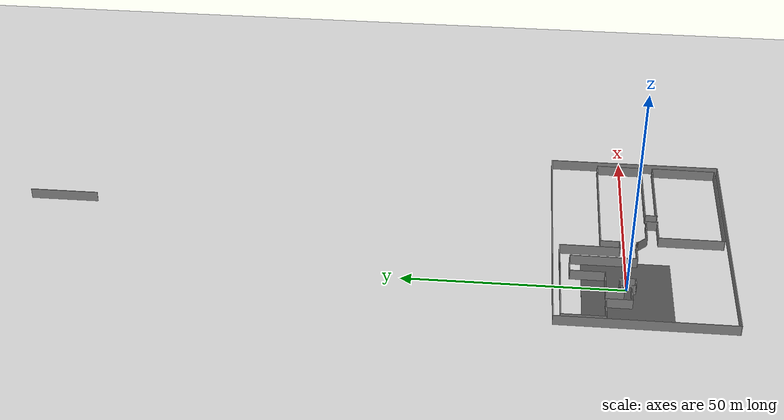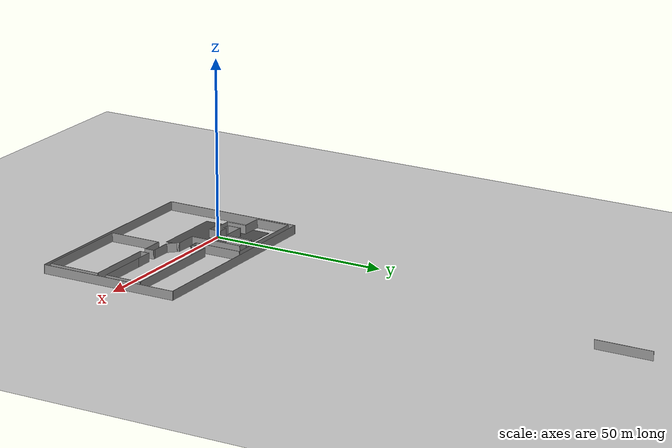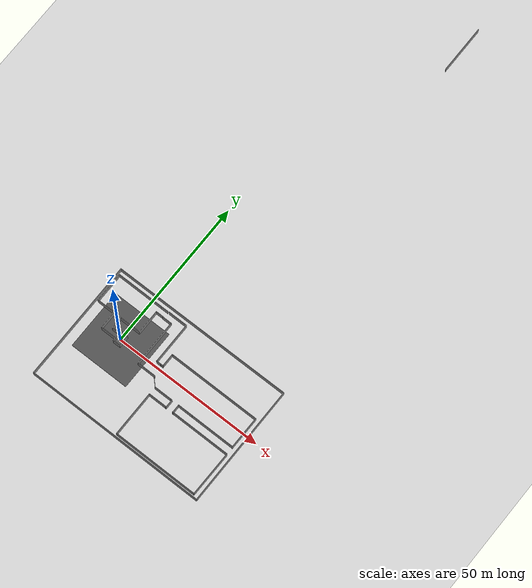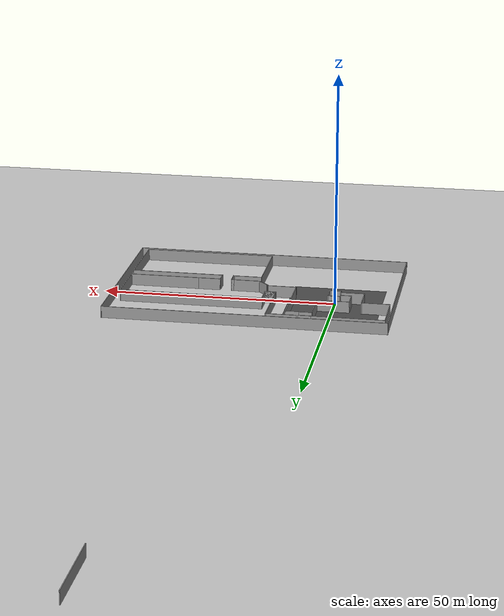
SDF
<sdf version="1.6">
 <world name="default">
  <light name="sun" type="directional">
   <pose>0 0 10 0 -0 0</pose>
   <diffuse>0.8 0.8 0.8 1</diffuse>
   <specular>0.2 0.2 0.2 1</specular>
   <attenuation>
    <range>1000</range>
    <constant>0.9</constant>
    <linear>0.01</linear>
    <quadratic>0.001</quadratic>
   </attenuation>
   <direction>-0.5 0.1 -0.9</direction>
  </light>
  <model name="ground_plane">
   <static>1</static>
   <link name="link">
    <collision name="collision">
     <geometry><plane><normal>0 0 1</normal><size>100 100</size></plane></geometry>
     <surface>
      <contact><collide_bitmask>65535</collide_bitmask></contact>
      <friction><ode><mu>100</mu><mu2>50</mu2></ode></friction>
     </surface>
    </collision>
    <visual name="visual">
     <cast_shadows>0</cast_shadows>
     <geometry><plane><normal>0 0 1</normal><size>100 100</size></plane></geometry>
     <material>
      <script><uri>file://media/materials/scripts/gazebo.material</uri><name>Gazebo/Grey</name></script>
     </material>
    </visual>
   </link>
  </model>
  <gravity>0 0 -9.8</gravity>
  <magnetic_field>6e-06 2.3e-05 -4.2e-05</magnetic_field>
  <atmosphere type="adiabatic"/>
  <physics name="default_physics" default="0" type="ode">
   <max_step_size>0.001</max_step_size>
   <real_time_factor>1</real_time_factor>
   <real_time_update_rate>1000</real_time_update_rate>
  </physics>
  <scene><ambient>0.4 0.4 0.4 1</ambient><background>0.7 0.7 0.7 1</background><shadows>1</shadows></scene>
  <audio><device>default</device></audio>
  <spherical_coordinates>
   <surface_model>EARTH_WGS84</surface_model>
   <latitude_deg>0</latitude_deg>
   <longitude_deg>0</longitude_deg>
   <elevation>0</elevation>
   <heading_deg>0</heading_deg>
  </spherical_coordinates>
  <model name="base1">
   <pose>17.0437 -3.5496 0 0 -0 0</pose>
   <link name="Wall_0">
    <collision name="Wall_0_Collision">
     <geometry><box><size>60.15 0.15 2.5</size></box></geometry>
     <pose>0 0 1.25 0 -0 0</pose>
    </collision>
    <visual name="Wall_0_Visual">
     <pose>0 0 1.25 0 -0 0</pose>
     <geometry><box><size>60.15 0.15 2.5</size></box></geometry>
     <material>
      <script><uri>file://media/materials/scripts/gazebo.material</uri><name>Gazebo/Grey</name></script>
      <ambient>1 1 1 1</ambient>
     </material>
     <meta><layer>0</layer></meta>
    </visual>
    <pose>0 19.8688 0 0 -0 0.0025</pose>
   </link>
   <link name="Wall_1">
    <collision name="Wall_1_Collision">
     <geometry><box><size>39.9818 0.15 2.5</size></box></geometry>
     <pose>0 0 1.25 0 -0 0</pose>
    </collision>
    <visual name="Wall_1_Visual">
     <pose>0 0 1.25 0 -0 0</pose>
     <geometry><box><size>39.9818 0.15 2.5</size></box></geometry>
     <material>
      <script><uri>file://media/materials/scripts/gazebo.material</uri><name>Gazebo/Grey</name></script>
      <ambient>1 1 1 1</ambient>
     </material>
     <meta><layer>0</layer></meta>
    </visual>
    <pose>30 0.027935 0 0 -0 -1.5708</pose>
   </link>
   <link name="Wall_2">
    <collision name="Wall_2_Collision">
     <geometry><box><size>60.15 0.15 2.5</size></box></geometry>
     <pose>0 0 1.25 0 -0 0</pose>
    </collision>
    <visual name="Wall_2_Visual">
     <pose>0 0 1.25 0 -0 0</pose>
     <geometry><box><size>60.15 0.15 2.5</size></box></geometry>
     <material>
      <script><uri>file://media/materials/scripts/gazebo.material</uri><name>Gazebo/Grey</name></script>
      <ambient>1 1 1 1</ambient>
     </material>
     <meta><layer>0</layer></meta>
    </visual>
    <pose>0 -19.944 0 0 -0 3.14159</pose>
   </link>
   <link name="Wall_3">
    <collision name="Wall_3_Collision">
     <geometry><box><size>39.8318 0.15 2.5</size></box></geometry>
     <pose>0 0 1.25 0 -0 0</pose>
    </collision>
    <visual name="Wall_3_Visual">
     <pose>0 0 1.25 0 -0 0</pose>
     <geometry><box><size>39.8318 0.15 2.5</size></box></geometry>
     <material>
      <script><uri>file://media/materials/scripts/gazebo.material</uri><name>Gazebo/Grey</name></script>
      <ambient>1 1 1 1</ambient>
     </material>
     <meta><layer>0</layer></meta>
    </visual>
    <pose>-30 -0.047064 0 0 -0 1.5708</pose>
   </link>
   <static>1</static>
  </model>
  <model name="base2">
   <pose>31.3228 58.5968 0 0 -0 0</pose>
   <link name="Wall_0">
    <collision name="Wall_0_Collision">
     <geometry><box><size>16 0.15 2.5</size></box></geometry>
     <pose>0 0 1.25 0 -0 0</pose>
    </collision>
    <visual name="Wall_0_Visual">
     <pose>0 0 1.25 0 -0 0</pose>
     <geometry><box><size>16 0.15 2.5</size></box></geometry>
     <material>
      <script><uri>file://media/materials/scripts/gazebo.material</uri><name>Gazebo/Grey</name></script>
      <ambient>1 1 1 1</ambient>
     </material>
     <meta><layer>0</layer></meta>
    </visual>
    <pose>-8.06233 73.3002 0 0 -0 -1.5708</pose>
   </link>
   <link name="Wall_13">
    <collision name="Wall_13_Collision">
     <geometry><box><size>28.449 0.15 2.5</size></box></geometry>
     <pose>0 0 1.25 0 -0 0</pose>
    </collision>
    <visual name="Wall_13_Visual">
     <pose>0 0 1.25 0 -0 0</pose>
     <geometry><box><size>28.449 0.15 2.5</size></box></geometry>
     <material>
      <script><uri>file://media/materials/scripts/gazebo.material</uri><name>Gazebo/Grey</name></script>
      <ambient>1 1 1 1</ambient>
     </material>
     <meta><layer>0</layer></meta>
    </visual>
    <pose>-0.067791 -81.2248 0 0 -0 3.14159</pose>
   </link>
   <link name="Wall_14">
    <collision name="Wall_14_Collision">
     <geometry><box><size>15 0.15 2.5</size></box></geometry>
     <pose>0 0 1.25 0 -0 0</pose>
    </collision>
    <visual name="Wall_14_Visual">
     <pose>0 0 1.25 0 -0 0</pose>
     <geometry><box><size>15 0.15 2.5</size></box></geometry>
     <material>
      <script><uri>file://media/materials/scripts/gazebo.material</uri><name>Gazebo/Grey</name></script>
      <ambient>1 1 1 1</ambient>
     </material>
     <meta><layer>0</layer></meta>
    </visual>
    <pose>-14.2173 -73.7998 0 0 -0 1.5708</pose>
   </link>
   <link name="Wall_16">
    <collision name="Wall_16_Collision">
     <geometry><box><size>15.0001 0.15 2.5</size></box></geometry>
     <pose>0 0 1.25 0 -0 0</pose>
    </collision>
    <visual name="Wall_16_Visual">
     <pose>0 0 1.25 0 -0 0</pose>
     <geometry><box><size>15.0001 0.15 2.5</size></box></geometry>
     <material>
      <script><uri>file://media/materials/scripts/gazebo.material</uri><name>Gazebo/Grey</name></script>
      <ambient>1 1 1 1</ambient>
     </material>
     <meta><layer>0</layer></meta>
    </visual>
    <pose>14.1492 -73.7998 0 0 -0 1.56171</pose>
   </link>
   <link name="Wall_18">
    <collision name="Wall_18_Collision">
     <geometry><box><size>6 0.15 2.5</size></box></geometry>
     <pose>0 0 1.25 0 -0 0</pose>
    </collision>
    <visual name="Wall_18_Visual">
     <pose>0 0 1.25 0 -0 0</pose>
     <geometry><box><size>6 0.15 2.5</size></box></geometry>
     <material>
      <script><uri>file://media/materials/scripts/gazebo.material</uri><name>Gazebo/Grey</name></script>
      <ambient>1 1 1 1</ambient>
     </material>
     <meta><layer>0</layer></meta>
    </visual>
    <pose>-11.2923 -66.3748 0 0 -0 0</pose>
   </link>
   <link name="Wall_20">
    <collision name="Wall_20_Collision">
     <geometry><box><size>20 0.15 2.5</size></box></geometry>
     <pose>0 0 1.25 0 -0 0</pose>
    </collision>
    <visual name="Wall_20_Visual">
     <pose>0 0 1.25 0 -0 0</pose>
     <geometry><box><size>20 0.15 2.5</size></box></geometry>
     <material>
      <script><uri>file://media/materials/scripts/gazebo.material</uri><name>Gazebo/Grey</name></script>
      <ambient>1 1 1 1</ambient>
     </material>
     <meta><layer>0</layer></meta>
    </visual>
    <pose>4.24665 -66.3748 0 0 -0 3.14159</pose>
   </link>
   <static>1</static>
  </model>
  <model name="base3">
   <pose>-3.18328 6.38977 0 0 -0 0</pose>
   <link name="Wall_24">
    <collision name="Wall_24_Collision">
     <geometry><box><size>15.5938 0.15 2.5</size></box></geometry>
     <pose>0 0 1.25 0 -0 0</pose>
    </collision>
    <visual name="Wall_24_Visual">
     <pose>0 0 1.25 0 -0 0</pose>
     <geometry><box><size>15.5938 0.15 2.5</size></box></geometry>
     <material>
      <script><uri>file://media/materials/scripts/gazebo.material</uri><name>Gazebo/Grey</name></script>
      <ambient>1 1 1 1</ambient>
     </material>
     <meta><layer>0</layer></meta>
    </visual>
    <pose>-1.30283 8.24113 0 0 -0 3.14159</pose>
   </link>
   <link name="Wall_25">
    <collision name="Wall_25_Collision">
     <geometry><box><size>9.93212 0.15 2.5</size></box></geometry>
     <pose>0 0 1.25 0 -0 0</pose>
    </collision>
    <visual name="Wall_25_Visual">
     <pose>0 0 1.25 0 -0 0</pose>
     <geometry><box><size>9.93212 0.15 2.5</size></box></geometry>
     <material>
      <script><uri>file://media/materials/scripts/gazebo.material</uri><name>Gazebo/Grey</name></script>
      <ambient>1 1 1 1</ambient>
     </material>
     <meta><layer>0</layer></meta>
    </visual>
    <pose>-9.025 3.35007 0 0 -0 -1.57083</pose>
   </link>
   <link name="Wall_26">
    <collision name="Wall_26_Collision">
     <geometry><box><size>6.18234 0.15 2.5</size></box></geometry>
     <pose>0 0 1.25 0 -0 0</pose>
    </collision>
    <visual name="Wall_26_Visual">
     <pose>0 0 1.25 0 -0 0</pose>
     <geometry><box><size>6.18234 0.15 2.5</size></box></geometry>
     <material>
      <script><uri>file://media/materials/scripts/gazebo.material</uri><name>Gazebo/Grey</name></script>
      <ambient>1 1 1 1</ambient>
     </material>
     <meta><layer>0</layer></meta>
    </visual>
    <pose>-6.009 -1.54093 0 0 -0 2e-05</pose>
   </link>
   <link name="Wall_27">
    <collision name="Wall_27_Collision">
     <geometry><box><size>5.90845 0.15 2.5</size></box></geometry>
     <pose>0 0 1.25 0 -0 0</pose>
    </collision>
    <visual name="Wall_27_Visual">
     <pose>0 0 1.25 0 -0 0</pose>
     <geometry><box><size>5.90845 0.15 2.5</size></box></geometry>
     <material>
      <script><uri>file://media/materials/scripts/gazebo.material</uri><name>Gazebo/Grey</name></script>
      <ambient>1 1 1 1</ambient>
     </material>
     <meta><layer>0</layer></meta>
    </visual>
    <pose>-2.99283 -4.41987 0 0 -0 -1.5708</pose>
   </link>
   <link name="Wall_28">
    <collision name="Wall_28_Collision">
     <geometry><box><size>5.25 0.15 2.5</size></box></geometry>
     <pose>0 0 1.25 0 -0 0</pose>
    </collision>
    <visual name="Wall_28_Visual">
     <pose>0 0 1.25 0 -0 0</pose>
     <geometry><box><size>5.25 0.15 2.5</size></box></geometry>
     <material>
      <script><uri>file://media/materials/scripts/gazebo.material</uri><name>Gazebo/Grey</name></script>
      <ambient>1 1 1 1</ambient>
     </material>
     <meta><layer>0</layer></meta>
    </visual>
    <pose>-0.442828 -7.29887 0 0 -0 0</pose>
   </link>
   <link name="Wall_29">
    <collision name="Wall_29_Collision">
     <geometry><box><size>1.092 0.15 2.5</size></box></geometry>
     <pose>0 0 1.25 0 -0 0</pose>
    </collision>
    <visual name="Wall_29_Visual">
     <pose>0 0 1.25 0 -0 0</pose>
     <geometry><box><size>1.092 0.15 2.5</size></box></geometry>
     <material>
      <script><uri>file://media/materials/scripts/gazebo.material</uri><name>Gazebo/Grey</name></script>
      <ambient>1 1 1 1</ambient>
     </material>
     <meta><layer>0</layer></meta>
    </visual>
    <pose>2.10717 -7.76987 0 0 -0 -1.5708</pose>
   </link>
   <link name="Wall_30">
    <collision name="Wall_30_Collision">
     <geometry><box><size>2.595 0.15 2.5</size></box></geometry>
     <pose>0 0 1.25 0 -0 0</pose>
    </collision>
    <visual name="Wall_30_Visual">
     <pose>0 0 1.25 0 -0 0</pose>
     <geometry><box><size>2.595 0.15 2.5</size></box></geometry>
     <material>
      <script><uri>file://media/materials/scripts/gazebo.material</uri><name>Gazebo/Grey</name></script>
      <ambient>1 1 1 1</ambient>
     </material>
     <meta><layer>0</layer></meta>
    </visual>
    <pose>3.32967 -8.24087 0 0 -0 0</pose>
   </link>
   <link name="Wall_31">
    <collision name="Wall_31_Collision">
     <geometry><box><size>3.59352 0.15 2.5</size></box></geometry>
     <pose>0 0 1.25 0 -0 0</pose>
    </collision>
    <visual name="Wall_31_Visual">
     <pose>0 0 1.25 0 -0 0</pose>
     <geometry><box><size>3.59352 0.15 2.5</size></box></geometry>
     <material>
      <script><uri>file://media/materials/scripts/gazebo.material</uri><name>Gazebo/Grey</name></script>
      <ambient>1 1 1 1</ambient>
     </material>
     <meta><layer>0</layer></meta>
    </visual>
    <pose>4.55217 -6.51937 0 0 -0 1.5708</pose>
   </link>
   <link name="Wall_32">
    <collision name="Wall_32_Collision">
     <geometry><box><size>2.836 0.15 2.5</size></box></geometry>
     <pose>0 0 1.25 0 -0 0</pose>
    </collision>
    <visual name="Wall_32_Visual">
     <pose>0 0 1.25 0 -0 0</pose>
     <geometry><box><size>2.836 0.15 2.5</size></box></geometry>
     <material>
      <script><uri>file://media/materials/scripts/gazebo.material</uri><name>Gazebo/Grey</name></script>
      <ambient>1 1 1 1</ambient>
     </material>
     <meta><layer>0</layer></meta>
    </visual>
    <pose>3.20917 -4.79787 0 0 -0 3.14159</pose>
   </link>
   <link name="Wall_33">
    <collision name="Wall_33_Collision">
     <geometry><box><size>0.845597 0.15 2.5</size></box></geometry>
     <pose>0 0 1.25 0 -0 0</pose>
    </collision>
    <visual name="Wall_33_Visual">
     <pose>0 0 1.25 0 -0 0</pose>
     <geometry><box><size>0.845597 0.15 2.5</size></box></geometry>
     <material>
      <script><uri>file://media/materials/scripts/gazebo.material</uri><name>Gazebo/Grey</name></script>
      <ambient>1 1 1 1</ambient>
     </material>
     <meta><layer>0</layer></meta>
    </visual>
    <pose>1.8955 -5.14443 0 0 -0 -1.48636</pose>
   </link>
   <link name="Wall_34">
    <collision name="Wall_34_Collision">
     <geometry><box><size>2.43391 0.15 2.5</size></box></geometry>
     <pose>0 0 1.25 0 -0 0</pose>
    </collision>
    <visual name="Wall_34_Visual">
     <pose>0 0 1.25 0 -0 0</pose>
     <geometry><box><size>2.43391 0.15 2.5</size></box></geometry>
     <material>
      <script><uri>file://media/materials/scripts/gazebo.material</uri><name>Gazebo/Grey</name></script>
      <ambient>1 1 1 1</ambient>
     </material>
     <meta><layer>0</layer></meta>
    </visual>
    <pose>0.782876 -5.49099 0 0 -0 3.14159</pose>
   </link>
   <link name="Wall_35">
    <collision name="Wall_35_Collision">
     <geometry><box><size>4 0.15 2.5</size></box></geometry>
     <pose>0 0 1.25 0 -0 0</pose>
    </collision>
    <visual name="Wall_35_Visual">
     <pose>0 0 1.25 0 -0 0</pose>
     <geometry><box><size>4 0.15 2.5</size></box></geometry>
     <material>
      <script><uri>file://media/materials/scripts/gazebo.material</uri><name>Gazebo/Grey</name></script>
      <ambient>1 1 1 1</ambient>
     </material>
     <meta><layer>0</layer></meta>
    </visual>
    <pose>-0.427089 -3.56599 0 0 -0 1.5708</pose>
   </link>
   <link name="Wall_36">
    <collision name="Wall_36_Collision">
     <geometry><box><size>6.93391 0.15 2.5</size></box></geometry>
     <pose>0 0 1.25 0 -0 0</pose>
    </collision>
    <visual name="Wall_36_Visual">
     <pose>0 0 1.25 0 -0 0</pose>
     <geometry><box><size>6.93391 0.15 2.5</size></box></geometry>
     <material>
      <script><uri>file://media/materials/scripts/gazebo.material</uri><name>Gazebo/Grey</name></script>
      <ambient>1 1 1 1</ambient>
     </material>
     <meta><layer>0</layer></meta>
    </visual>
    <pose>3.03288 -1.64099 0 0 -0 0</pose>
   </link>
   <link name="Wall_37">
    <collision name="Wall_37_Collision">
     <geometry><box><size>7.95612 0.15 2.5</size></box></geometry>
     <pose>0 0 1.25 0 -0 0</pose>
    </collision>
    <visual name="Wall_37_Visual">
     <pose>0 0 1.25 0 -0 0</pose>
     <geometry><box><size>7.95612 0.15 2.5</size></box></geometry>
     <material>
      <script><uri>file://media/materials/scripts/gazebo.material</uri><name>Gazebo/Grey</name></script>
      <ambient>1 1 1 1</ambient>
     </material>
     <meta><layer>0</layer></meta>
    </visual>
    <pose>6.425 2.26207 0 0 -0 1.57075</pose>
   </link>
   <link name="Wall_38">
    <collision name="Wall_38_Collision">
     <geometry><box><size>2.75 0.15 2.5</size></box></geometry>
     <pose>0 0 1.25 0 -0 0</pose>
    </collision>
    <visual name="Wall_38_Visual">
     <pose>0 0 1.25 0 -0 0</pose>
     <geometry><box><size>2.75 0.15 2.5</size></box></geometry>
     <material>
      <script><uri>file://media/materials/scripts/gazebo.material</uri><name>Gazebo/Grey</name></script>
      <ambient>1 1 1 1</ambient>
     </material>
     <meta><layer>0</layer></meta>
    </visual>
    <pose>7.72517 6.16513 0 0 -0 0</pose>
   </link>
   <link name="Wall_40">
    <collision name="Wall_40_Collision">
     <geometry><box><size>2.697 0.15 2.5</size></box></geometry>
     <pose>0 0 1.25 0 -0 0</pose>
    </collision>
    <visual name="Wall_40_Visual">
     <pose>0 0 1.25 0 -0 0</pose>
     <geometry><box><size>2.697 0.15 2.5</size></box></geometry>
     <material>
      <script><uri>file://media/materials/scripts/gazebo.material</uri><name>Gazebo/Grey</name></script>
      <ambient>1 1 1 1</ambient>
     </material>
     <meta><layer>0</layer></meta>
    </visual>
    <pose>7.69267 8.24113 0 0 -0 3.14159</pose>
   </link>
   <static>1</static>
  </model>
  <model name="base6">
   <pose>30.1922 -1.22503 0 0 -0 0</pose>
   <link name="Wall_82">
    <collision name="Wall_82_Collision">
     <geometry><box><size>3.25 0.15 2.5</size></box></geometry>
     <pose>0 0 1.25 0 -0 0</pose>
    </collision>
    <visual name="Wall_82_Visual">
     <pose>0 0 1.25 0 -0 0</pose>
     <geometry><box><size>3.25 0.15 2.5</size></box></geometry>
     <material>
      <script><uri>file://media/materials/scripts/gazebo.material</uri><name>Gazebo/Grey</name></script>
      <ambient>1 1 1 1</ambient>
     </material>
     <meta><layer>0</layer></meta>
    </visual>
    <pose>-14.1828 -2.85309 0 0 -0 -0.785398</pose>
   </link>
   <link name="Wall_83">
    <collision name="Wall_83_Collision">
     <geometry><box><size>5.75 0.15 2.5</size></box></geometry>
     <pose>0 0 1.25 0 -0 0</pose>
    </collision>
    <visual name="Wall_83_Visual">
     <pose>0 0 1.25 0 -0 0</pose>
     <geometry><box><size>5.75 0.15 2.5</size></box></geometry>
     <material>
      <script><uri>file://media/materials/scripts/gazebo.material</uri><name>Gazebo/Grey</name></script>
      <ambient>1 1 1 1</ambient>
     </material>
     <meta><layer>0</layer></meta>
    </visual>
    <pose>-10.2868 -3.9491 0 0 -0 0</pose>
   </link>
   <link name="Wall_85">
    <collision name="Wall_85_Collision">
     <geometry><box><size>0.75 0.15 2.5</size></box></geometry>
     <pose>0 0 1.25 0 -0 0</pose>
    </collision>
    <visual name="Wall_85_Visual">
     <pose>0 0 1.25 0 -0 0</pose>
     <geometry><box><size>0.75 0.15 2.5</size></box></geometry>
     <material>
      <script><uri>file://media/materials/scripts/gazebo.material</uri><name>Gazebo/Grey</name></script>
      <ambient>1 1 1 1</ambient>
     </material>
     <meta><layer>0</layer></meta>
    </visual>
    <pose>-7.18682 -3.9491 0 0 -0 0</pose>
   </link>
   <link name="Wall_87">
    <collision name="Wall_87_Collision">
     <geometry><box><size>15 0.15 2.5</size></box></geometry>
     <pose>0 0 1.25 0 -0 0</pose>
    </collision>
    <visual name="Wall_87_Visual">
     <pose>0 0 1.25 0 -0 0</pose>
     <geometry><box><size>15 0.15 2.5</size></box></geometry>
     <material>
      <script><uri>file://media/materials/scripts/gazebo.material</uri><name>Gazebo/Grey</name></script>
      <ambient>1 1 1 1</ambient>
     </material>
     <meta><layer>0</layer></meta>
    </visual>
    <pose>7.82915 -3.92255 0 0 -0 0</pose>
   </link>
   <link name="Wall_88">
    <collision name="Wall_88_Collision">
     <geometry><box><size>10.7777 0.15 2.5</size></box></geometry>
     <pose>0 0 1.25 0 -0 0</pose>
    </collision>
    <visual name="Wall_88_Visual">
     <pose>0 0 1.25 0 -0 0</pose>
     <geometry><box><size>10.7777 0.15 2.5</size></box></geometry>
     <material>
      <script><uri>file://media/materials/scripts/gazebo.material</uri><name>Gazebo/Grey</name></script>
      <ambient>1 1 1 1</ambient>
     </material>
     <meta><layer>0</layer></meta>
    </visual>
    <pose>15.2818 1.33495 0 0 -0 1.56559</pose>
   </link>
   <link name="Wall_89">
    <collision name="Wall_89_Collision">
     <geometry><box><size>30.75 0.15 2.5</size></box></geometry>
     <pose>0 0 1.25 0 -0 0</pose>
    </collision>
    <visual name="Wall_89_Visual">
     <pose>0 0 1.25 0 -0 0</pose>
     <geometry><box><size>30.75 0.15 2.5</size></box></geometry>
     <material>
      <script><uri>file://media/materials/scripts/gazebo.material</uri><name>Gazebo/Grey</name></script>
      <ambient>1 1 1 1</ambient>
     </material>
     <meta><layer>0</layer></meta>
    </visual>
    <pose>0.009526 6.64871 0 0 -0 3.14159</pose>
   </link>
   <link name="Wall_90">
    <collision name="Wall_90_Collision">
     <geometry><box><size>4.25 0.15 2.5</size></box></geometry>
     <pose>0 0 1.25 0 -0 0</pose>
    </collision>
    <visual name="Wall_90_Visual">
     <pose>0 0 1.25 0 -0 0</pose>
     <geometry><box><size>4.25 0.15 2.5</size></box></geometry>
     <material>
      <script><uri>file://media/materials/scripts/gazebo.material</uri><name>Gazebo/Grey</name></script>
      <ambient>1 1 1 1</ambient>
     </material>
     <meta><layer>0</layer></meta>
    </visual>
    <pose>-15.2905 4.59871 0 0 -0 -1.5708</pose>
   </link>
   <link name="Wall_93">
    <collision name="Wall_93_Collision">
     <geometry><box><size>5 0.15 2.5</size></box></geometry>
     <pose>0 0 1.25 0 -0 0</pose>
    </collision>
    <visual name="Wall_93_Visual">
     <pose>0 0 1.25 0 -0 0</pose>
     <geometry><box><size>5 0.15 2.5</size></box></geometry>
     <material>
      <script><uri>file://media/materials/scripts/gazebo.material</uri><name>Gazebo/Grey</name></script>
      <ambient>1 1 1 1</ambient>
     </material>
     <meta><layer>0</layer></meta>
    </visual>
    <pose>-2.02085 -3.92255 0 0 -0 3.14159</pose>
   </link>
   <link name="Wall_95">
    <collision name="Wall_95_Collision">
     <geometry><box><size>2.87 0.15 2.5</size></box></geometry>
     <pose>0 0 1.25 0 -0 0</pose>
    </collision>
    <visual name="Wall_95_Visual">
     <pose>0 0 1.25 0 -0 0</pose>
     <geometry><box><size>2.87 0.15 2.5</size></box></geometry>
     <material>
      <script><uri>file://media/materials/scripts/gazebo.material</uri><name>Gazebo/Grey</name></script>
      <ambient>1 1 1 1</ambient>
     </material>
     <meta><layer>0</layer></meta>
    </visual>
    <pose>-4.44585 -5.28255 0 0 -0 -1.5708</pose>
   </link>
   <link name="Wall_97">
    <collision name="Wall_97_Collision">
     <geometry><box><size>2.85 0.15 2.5</size></box></geometry>
     <pose>0 0 1.25 0 -0 0</pose>
    </collision>
    <visual name="Wall_97_Visual">
     <pose>0 0 1.25 0 -0 0</pose>
     <geometry><box><size>2.85 0.15 2.5</size></box></geometry>
     <material>
      <script><uri>file://media/materials/scripts/gazebo.material</uri><name>Gazebo/Grey</name></script>
      <ambient>1 1 1 1</ambient>
     </material>
     <meta><layer>0</layer></meta>
    </visual>
    <pose>-6.88682 -5.2991 0 0 -0 -1.5708</pose>
   </link>
   <static>1</static>
  </model>
  <model name="rode1">
   <pose>10.4226 5.77455 0 0 -0 0</pose>
   <link name="Wall_138">
    <collision name="Wall_138_Collision">
     <geometry><box><size>2.5 0.15 2.5</size></box></geometry>
     <pose>0 0 1.25 0 -0 0</pose>
    </collision>
    <visual name="Wall_138_Visual">
     <pose>0 0 1.25 0 -0 0</pose>
     <geometry><box><size>2.5 0.15 2.5</size></box></geometry>
     <material>
      <script><uri>file://media/materials/scripts/gazebo.material</uri><name>Gazebo/Grey</name></script>
      <ambient>1 1 1 1</ambient>
     </material>
     <meta><layer>0</layer></meta>
    </visual>
    <pose>3.35746 -4.64109 0 0 -0 0</pose>
   </link>
   <link name="Wall_139">
    <collision name="Wall_139_Collision">
     <geometry><box><size>2.5 0.15 2.5</size></box></geometry>
     <pose>0 0 1.25 0 -0 0</pose>
    </collision>
    <visual name="Wall_139_Visual">
     <pose>0 0 1.25 0 -0 0</pose>
     <geometry><box><size>2.5 0.15 2.5</size></box></geometry>
     <material>
      <script><uri>file://media/materials/scripts/gazebo.material</uri><name>Gazebo/Grey</name></script>
      <ambient>1 1 1 1</ambient>
     </material>
     <meta><layer>0</layer></meta>
    </visual>
    <pose>3.35746 -4.64109 0 0 -0 3.14159</pose>
   </link>
   <link name="Wall_140">
    <collision name="Wall_140_Collision">
     <geometry><box><size>13.75 0.15 2.5</size></box></geometry>
     <pose>0 0 1.25 0 -0 0</pose>
    </collision>
    <visual name="Wall_140_Visual">
     <pose>0 0 1.25 0 -0 0</pose>
     <geometry><box><size>13.75 0.15 2.5</size></box></geometry>
     <material>
      <script><uri>file://media/materials/scripts/gazebo.material</uri><name>Gazebo/Grey</name></script>
      <ambient>1 1 1 1</ambient>
     </material>
     <meta><layer>0</layer></meta>
    </visual>
    <pose>2.18246 2.15891 0 0 -0 1.5708</pose>
   </link>
   <link name="Wall_141">
    <collision name="Wall_141_Collision">
     <geometry><box><size>6.5 0.15 2.5</size></box></geometry>
     <pose>0 0 1.25 0 -0 0</pose>
    </collision>
    <visual name="Wall_141_Visual">
     <pose>0 0 1.25 0 -0 0</pose>
     <geometry><box><size>6.5 0.15 2.5</size></box></geometry>
     <material>
      <script><uri>file://media/materials/scripts/gazebo.material</uri><name>Gazebo/Grey</name></script>
      <ambient>1 1 1 1</ambient>
     </material>
     <meta><layer>0</layer></meta>
    </visual>
    <pose>-0.992542 8.95891 0 0 -0 3.14159</pose>
   </link>
   <link name="Wall_144">
    <collision name="Wall_144_Collision">
     <geometry><box><size>0.75 0.15 2.5</size></box></geometry>
     <pose>0 0 1.25 0 -0 0</pose>
    </collision>
    <visual name="Wall_144_Visual">
     <pose>0 0 1.25 0 -0 0</pose>
     <geometry><box><size>0.75 0.15 2.5</size></box></geometry>
     <material>
      <script><uri>file://media/materials/scripts/gazebo.material</uri><name>Gazebo/Grey</name></script>
      <ambient>1 1 1 1</ambient>
     </material>
     <meta><layer>0</layer></meta>
    </visual>
    <pose>4.58627 -8.67165 0 0 -0 -1.0472</pose>
   </link>
   <link name="Wall_145">
    <collision name="Wall_145_Collision">
     <geometry><box><size>0.75 0.15 2.5</size></box></geometry>
     <pose>0 0 1.25 0 -0 0</pose>
    </collision>
    <visual name="Wall_145_Visual">
     <pose>0 0 1.25 0 -0 0</pose>
     <geometry><box><size>0.75 0.15 2.5</size></box></geometry>
     <material>
      <script><uri>file://media/materials/scripts/gazebo.material</uri><name>Gazebo/Grey</name></script>
      <ambient>1 1 1 1</ambient>
     </material>
     <meta><layer>0</layer></meta>
    </visual>
    <pose>4.58627 -8.67165 0 0 -0 2.0944</pose>
   </link>
   <link name="Wall_146">
    <collision name="Wall_146_Collision">
     <geometry><box><size>6.25 0.15 2.5</size></box></geometry>
     <pose>0 0 1.25 0 -0 0</pose>
    </collision>
    <visual name="Wall_146_Visual">
     <pose>0 0 1.25 0 -0 0</pose>
     <geometry><box><size>6.25 0.15 2.5</size></box></geometry>
     <material>
      <script><uri>file://media/materials/scripts/gazebo.material</uri><name>Gazebo/Grey</name></script>
      <ambient>1 1 1 1</ambient>
     </material>
     <meta><layer>0</layer></meta>
    </visual>
    <pose>1.38627 -8.41184 0 0 -0 3.14159</pose>
   </link>
   <link name="Wall_147">
    <collision name="Wall_147_Collision">
     <geometry><box><size>15.25 0.15 2.5</size></box></geometry>
     <pose>0 0 1.25 0 -0 0</pose>
    </collision>
    <visual name="Wall_147_Visual">
     <pose>0 0 1.25 0 -0 0</pose>
     <geometry><box><size>15.25 0.15 2.5</size></box></geometry>
     <material>
      <script><uri>file://media/materials/scripts/gazebo.material</uri><name>Gazebo/Grey</name></script>
      <ambient>1 1 1 1</ambient>
     </material>
     <meta><layer>0</layer></meta>
    </visual>
    <pose>-1.66373 -0.861845 0 0 -0 1.5708</pose>
   </link>
   <link name="Wall_148">
    <collision name="Wall_148_Collision">
     <geometry><box><size>3.25 0.15 2.5</size></box></geometry>
     <pose>0 0 1.25 0 -0 0</pose>
    </collision>
    <visual name="Wall_148_Visual">
     <pose>0 0 1.25 0 -0 0</pose>
     <geometry><box><size>3.25 0.15 2.5</size></box></geometry>
     <material>
      <script><uri>file://media/materials/scripts/gazebo.material</uri><name>Gazebo/Grey</name></script>
      <ambient>1 1 1 1</ambient>
     </material>
     <meta><layer>0</layer></meta>
    </visual>
    <pose>-3.21373 6.68816 0 0 -0 3.14159</pose>
   </link>
   <static>1</static>
  </model>
  <model name="sidewalk_28">
   <pose>-43.3442 -1.72561 0 0 -0 0</pose>
   <scale>1 1 1</scale>
   <link name="link">
    <pose>-43.3442 -1.72561 0 0 -0 0</pose>
    <velocity>0 0 0 0 -0 0</velocity>
    <acceleration>0 0 0 0 -0 0</acceleration>
    <wrench>0 0 0 0 -0 0</wrench>
   </link>
  </model>
  <model name="sidewalk_28_clone_clone">
   <pose>8.38468 -44.0858 0 0 -0 1.5612</pose>
   <scale>1 1 1</scale>
   <link name="link">
    <pose>8.38468 -44.0858 0 0 -0 1.5612</pose>
    <velocity>0 0 0 0 -0 0</velocity>
    <acceleration>0 0 0 0 -0 0</acceleration>
    <wrench>0 0 0 0 -0 0</wrench>
   </link>
  </model>
  <model name="sidewalk_28_clone_clone_clone">
   <pose>1.1521 -44.0179 0 0 -0 1.5612</pose>
   <scale>1 1 1</scale>
   <link name="link">
    <pose>1.1521 -44.0179 0 0 -0 1.5612</pose>
    <velocity>0 0 0 0 -0 0</velocity>
    <acceleration>0 0 0 0 -0 0</acceleration>
    <wrench>0 0 0 0 -0 0</wrench>
   </link>
  </model>
  <model name="sidewalk_28_clone_clone_clone_0">
   <pose>8.98064 13.6566 0 0 -0 1.5612</pose>
   <scale>1 1 1</scale>
   <link name="link">
    <pose>8.98064 13.6566 0 0 -0 1.5612</pose>
    <velocity>0 0 0 0 -0 0</velocity>
    <acceleration>0 0 0 0 -0 0</acceleration>
    <wrench>0 0 0 0 -0 0</wrench>
   </link>
  </model>
  <model name="sidewalk_28_clone_clone_clone_clone">
   <pose>1.72342 13.3111 0 0 -0 1.5612</pose>
   <scale>1 1 1</scale>
   <link name="link">
    <pose>1.72342 13.3111 0 0 -0 1.5612</pose>
    <velocity>0 0 0 0 -0 0</velocity>
    <acceleration>0 0 0 0 -0 0</acceleration>
    <wrench>0 0 0 0 -0 0</wrench>
   </link>
  </model>
  <model name="sidewalk_29">
   <pose>-43.537 -44.0143 0 0 -0 0</pose>
   <scale>1 1 1</scale>
   <link name="link">
    <pose>-43.537 -44.0143 0 0 -0 0</pose>
    <velocity>0 0 0 0 -0 0</velocity>
    <acceleration>0 0 0 0 -0 0</acceleration>
    <wrench>0 0 0 0 -0 0</wrench>
   </link>
  </model>
  <model name="sidewalk_29_clone">
   <pose>13.4896 -35.9147 0 0 -0 0</pose>
   <scale>1 1 1</scale>
   <link name="link">
    <pose>13.4896 -35.9147 0 0 -0 0</pose>
    <velocity>0 0 0 0 -0 0</velocity>
    <acceleration>0 0 0 0 -0 0</acceleration>
    <wrench>0 0 0 0 -0 0</wrench>
   </link>
  </model>
  <model name="sidewalk_29_clone_0">
   <pose>13.3772 -43.9647 0 0 -0 0</pose>
   <scale>1 1 1</scale>
   <link name="link">
    <pose>13.3772 -43.9647 0 0 -0 0</pose>
    <velocity>0 0 0 0 -0 0</velocity>
    <acceleration>0 0 0 0 -0 0</acceleration>
    <wrench>0 0 0 0 -0 0</wrench>
   </link>
  </model>
  <model name="stop_light">
   <pose>-2.55829 -2.6924 2.19986 0 0 -3.10948</pose>
   <scale>1 1 1</scale>
   <link name="link">
    <pose>-2.55829 -2.6924 2.19986 0 0 -3.10948</pose>
    <velocity>0 0 0 0 -0 0</velocity>
    <acceleration>0 0 0 0 -0 0</acceleration>
    <wrench>0 0 0 0 -0 0</wrench>
   </link>
  </model>
  <model name="stop_light_0">
   <pose>2.5623 2.38158 2.15768 0 -0 0</pose>
   <scale>1 1 1</scale>
   <link name="link">
    <pose>2.5623 2.38158 2.15768 0 -0 0</pose>
    <velocity>0 0 0 0 -0 0</velocity>
    <acceleration>0 0 0 0 -0 0</acceleration>
    <wrench>0 0 0 0 -0 0</wrench>
   </link>
  </model>
  <model name="asphalt_plane">
   <static>1</static>
   <link name="link">
    <collision name="collision"><geometry><box><size>20 20 0.1</size></box></geometry></collision>
    <visual name="visual">
     <cast_shadows>0</cast_shadows>
     <geometry><box><size>20 20 0.1</size></box></geometry>
     <material>
      <script>
       <uri>model://asphalt_plane/materials/scripts</uri>
       <uri>model://asphalt_plane/materials/textures</uri>
       <name>vrc/asphalt</name>
      </script>
     </material>
    </visual>
   </link>
   <pose>0.049935 0.017942 0 0 -0 0</pose>
  </model>
 </world>
</sdf>
